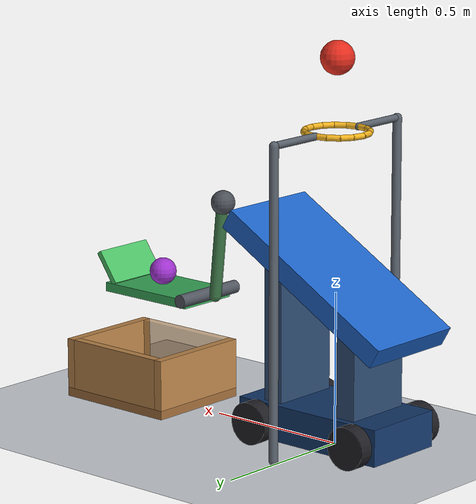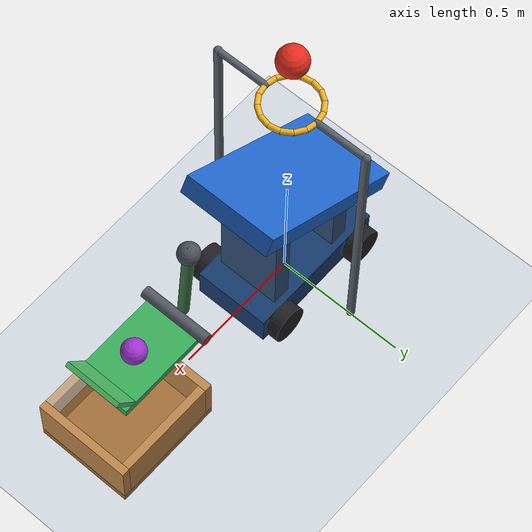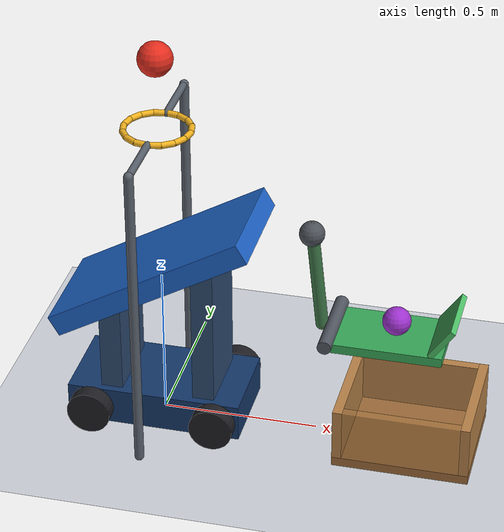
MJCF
<mujoco model="ball_hoop_cart_flap_box">
  <compiler angle="degree" inertiafromgeom="true"/>
  <option timestep="0.002" gravity="0 0 -9.81" integrator="implicitfast" solver="Newton" iterations="80" cone="elliptic"/>
  <size njmax="2000" nconmax="400"/>
  <statistic center="0.35 0 0.65" extent="1.65"/>
  <visual>
    <headlight ambient="0.35 0.35 0.35" diffuse="0.7 0.7 0.7" specular="0.2 0.2 0.2"/>
  </visual>

  <worldbody>
    <light name="key_light" pos="-1 -2 3" dir="0.3 0.5 -1"/>
    <light name="fill_light" pos="2 1 2.5" dir="-0.5 -0.2 -1"/>
    <geom name="floor" type="plane" size="4 4 0.1" rgba="0.82 0.84 0.87 1" friction="0.8 0.02 0.015" condim="6"/>

    <!-- The initial vertical clearance to the inclined contact surface is 0.6 m. -->
    <body name="ball1" pos="0 0 1.253923">
      <freejoint name="ball1_free"/>
      <geom name="ball1_sphere" type="sphere" size="0.055" mass="1.5" rgba="0.9 0.18 0.12 1" friction="0.08 0.005 0.0002" condim="6" solref="0.006 1" solimp="0.95 0.99 0.001"/>
    </body>

    <body name="hoop" pos="0 0 1.02">
      <geom name="hoop_segment_01" type="capsule" fromto="0.105 0 0 0.097007 0.040182 0" size="0.01" rgba="0.95 0.7 0.12 1"/>
      <geom name="hoop_segment_02" type="capsule" fromto="0.097007 0.040182 0 0.074246 0.074246 0" size="0.01" rgba="0.95 0.7 0.12 1"/>
      <geom name="hoop_segment_03" type="capsule" fromto="0.074246 0.074246 0 0.040182 0.097007 0" size="0.01" rgba="0.95 0.7 0.12 1"/>
      <geom name="hoop_segment_04" type="capsule" fromto="0.040182 0.097007 0 0 0.105 0" size="0.01" rgba="0.95 0.7 0.12 1"/>
      <geom name="hoop_segment_05" type="capsule" fromto="0 0.105 0 -0.040182 0.097007 0" size="0.01" rgba="0.95 0.7 0.12 1"/>
      <geom name="hoop_segment_06" type="capsule" fromto="-0.040182 0.097007 0 -0.074246 0.074246 0" size="0.01" rgba="0.95 0.7 0.12 1"/>
      <geom name="hoop_segment_07" type="capsule" fromto="-0.074246 0.074246 0 -0.097007 0.040182 0" size="0.01" rgba="0.95 0.7 0.12 1"/>
      <geom name="hoop_segment_08" type="capsule" fromto="-0.097007 0.040182 0 -0.105 0 0" size="0.01" rgba="0.95 0.7 0.12 1"/>
      <geom name="hoop_segment_09" type="capsule" fromto="-0.105 0 0 -0.097007 -0.040182 0" size="0.01" rgba="0.95 0.7 0.12 1"/>
      <geom name="hoop_segment_10" type="capsule" fromto="-0.097007 -0.040182 0 -0.074246 -0.074246 0" size="0.01" rgba="0.95 0.7 0.12 1"/>
      <geom name="hoop_segment_11" type="capsule" fromto="-0.074246 -0.074246 0 -0.040182 -0.097007 0" size="0.01" rgba="0.95 0.7 0.12 1"/>
      <geom name="hoop_segment_12" type="capsule" fromto="-0.040182 -0.097007 0 0 -0.105 0" size="0.01" rgba="0.95 0.7 0.12 1"/>
      <geom name="hoop_segment_13" type="capsule" fromto="0 -0.105 0 0.040182 -0.097007 0" size="0.01" rgba="0.95 0.7 0.12 1"/>
      <geom name="hoop_segment_14" type="capsule" fromto="0.040182 -0.097007 0 0.074246 -0.074246 0" size="0.01" rgba="0.95 0.7 0.12 1"/>
      <geom name="hoop_segment_15" type="capsule" fromto="0.074246 -0.074246 0 0.097007 -0.040182 0" size="0.01" rgba="0.95 0.7 0.12 1"/>
      <geom name="hoop_segment_16" type="capsule" fromto="0.097007 -0.040182 0 0.105 0 0" size="0.01" rgba="0.95 0.7 0.12 1"/>
      <geom name="hoop_mount_left" type="capsule" fromto="0 -0.105 0 0 -0.3 0" size="0.012" rgba="0.35 0.38 0.42 1"/>
      <geom name="hoop_mount_right" type="capsule" fromto="0 0.105 0 0 0.3 0" size="0.012" rgba="0.35 0.38 0.42 1"/>
      <geom name="hoop_post_left" type="capsule" fromto="0 -0.3 -1.005 0 -0.3 0" size="0.015" rgba="0.35 0.38 0.42 1"/>
      <geom name="hoop_post_right" type="capsule" fromto="0 0.3 -1.005 0 0.3 0" size="0.015" rgba="0.35 0.38 0.42 1"/>
    </body>

    <!-- A rising ramp converts the falling ball's impulse into positive-x cart motion. -->
    <body name="cart" pos="0 0 0">
      <joint name="cart_slide" type="slide" axis="1 0 0" limited="true" range="0 0.28" damping="0.12" frictionloss="0.03" solreflimit="0.006 1" solimplimit="0.99 0.99 0.001"/>
      <geom name="cart_slope" type="box" pos="0 0 0.55" quat="0.965925826 0 -0.258819045 0" size="0.35 0.18 0.035" mass="0.32" rgba="0.12 0.4 0.8 1" friction="0.08 0.005 0.0002" condim="6" solref="0.006 1"/>
      <geom name="cart_chassis" type="box" pos="0 0 0.075" size="0.28 0.145 0.06" mass="0.22" rgba="0.08 0.22 0.42 1" friction="0.08 0.005 0.0002"/>
      <geom name="cart_rear_support" type="box" pos="-0.14 0 0.275" size="0.035 0.12 0.16" mass="0.05" rgba="0.18 0.3 0.45 1" friction="0.08 0.005 0.0002"/>
      <geom name="cart_front_support" type="box" pos="0.16 0 0.355" size="0.035 0.12 0.25" mass="0.05" rgba="0.18 0.3 0.45 1" friction="0.08 0.005 0.0002"/>
      <geom name="cart_wheel_back_left" type="cylinder" pos="-0.2 -0.17 0.07" quat="0.707106781 0.707106781 0 0" size="0.07 0.025" mass="0.02" contype="0" conaffinity="0" rgba="0.12 0.12 0.14 1"/>
      <geom name="cart_wheel_back_right" type="cylinder" pos="-0.2 0.17 0.07" quat="0.707106781 0.707106781 0 0" size="0.07 0.025" mass="0.02" contype="0" conaffinity="0" rgba="0.12 0.12 0.14 1"/>
      <geom name="cart_wheel_front_left" type="cylinder" pos="0.2 -0.17 0.07" quat="0.707106781 0.707106781 0 0" size="0.07 0.025" mass="0.02" contype="0" conaffinity="0" rgba="0.12 0.12 0.14 1"/>
      <geom name="cart_wheel_front_right" type="cylinder" pos="0.2 0.17 0.07" quat="0.707106781 0.707106781 0 0" size="0.07 0.025" mass="0.02" contype="0" conaffinity="0" rgba="0.12 0.12 0.14 1"/>
    </body>

    <!-- The elevated counterweight holds the upper stop until the cart tips it past balance. -->
    <body name="flap" pos="0.55 0 0.4">
      <joint name="flap_hinge" type="hinge" axis="0 -1 0" limited="true" range="-60 0" damping="0.06" solreflimit="0.004 1" solimplimit="0.99 0.99 0.001"/>
      <geom name="flap_shelf" type="box" pos="0.18 0 -0.015" size="0.18 0.11 0.015" mass="0.07" rgba="0.22 0.67 0.35 1" friction="0.35 0.005 0.0001" condim="6" solref="0.006 1"/>
      <geom name="flap_retaining_ramp" type="box" pos="0.3565 0 0.04925" quat="0.887010833 0 -0.461748613 0" size="0.06014 0.11 0.009" mass="0.018" rgba="0.3 0.76 0.4 1" friction="0.35 0.005 0.0001" condim="6" solref="0.006 1"/>
      <geom name="flap_trigger_arm" type="capsule" fromto="-0.035 0 0 -0.07 0 0.34" size="0.02" mass="0.05" rgba="0.23 0.45 0.27 1" friction="0.08 0.005 0.0002" solref="0.006 1"/>
      <geom name="flap_counterweight" type="sphere" pos="-0.07 0 0.32" size="0.04" mass="0.65" rgba="0.3 0.32 0.35 1" friction="0.08 0.005 0.0002" solref="0.006 1"/>
      <geom name="flap_axle" type="cylinder" quat="0.707106781 0.707106781 0 0" size="0.022 0.135" mass="0.02" contype="0" conaffinity="0" rgba="0.32 0.34 0.38 1"/>
    </body>

    <body name="ball2" pos="0.75 0 0.445">
      <freejoint name="ball2_free"/>
      <geom name="ball2_sphere" type="sphere" size="0.045" mass="0.06" rgba="0.63 0.2 0.82 1" friction="0.35 0.005 0.0001" condim="6" solref="0.006 1" solimp="0.95 0.99 0.001"/>
    </body>

    <!-- Box contact has higher priority, supplying rolling resistance for final settling. -->
    <body name="box" pos="0.805 0 0">
      <geom name="box_bottom" type="box" pos="0 0 0.015" size="0.215 0.185 0.015" rgba="0.63 0.43 0.23 1" priority="2" friction="0.8 0.02 0.015" condim="6" solref="0.008 1"/>
      <geom name="box_left_wall" type="box" pos="-0.2 0 0.115" size="0.015 0.185 0.085" rgba="0.73 0.52 0.29 1" priority="2" friction="0.8 0.02 0.015" condim="6" solref="0.008 1"/>
      <geom name="box_right_wall" type="box" pos="0.2 0 0.115" size="0.015 0.185 0.085" rgba="0.73 0.52 0.29 1" priority="2" friction="0.8 0.02 0.015" condim="6" solref="0.008 1"/>
      <geom name="box_front_wall" type="box" pos="0 -0.17 0.115" size="0.185 0.015 0.085" rgba="0.73 0.52 0.29 0.6" priority="2" friction="0.8 0.02 0.015" condim="6" solref="0.008 1"/>
      <geom name="box_back_wall" type="box" pos="0 0.17 0.115" size="0.185 0.015 0.085" rgba="0.73 0.52 0.29 1" priority="2" friction="0.8 0.02 0.015" condim="6" solref="0.008 1"/>
    </body>
  </worldbody>

  <keyframe>
    <key name="start" qpos="0 0 1.253923 1 0 0 0 0 0 0.75 0 0.445 1 0 0 0" qvel="0 0 0 0 0 0 0 0 0 0 0 0 0 0"/>
  </keyframe>
</mujoco>
